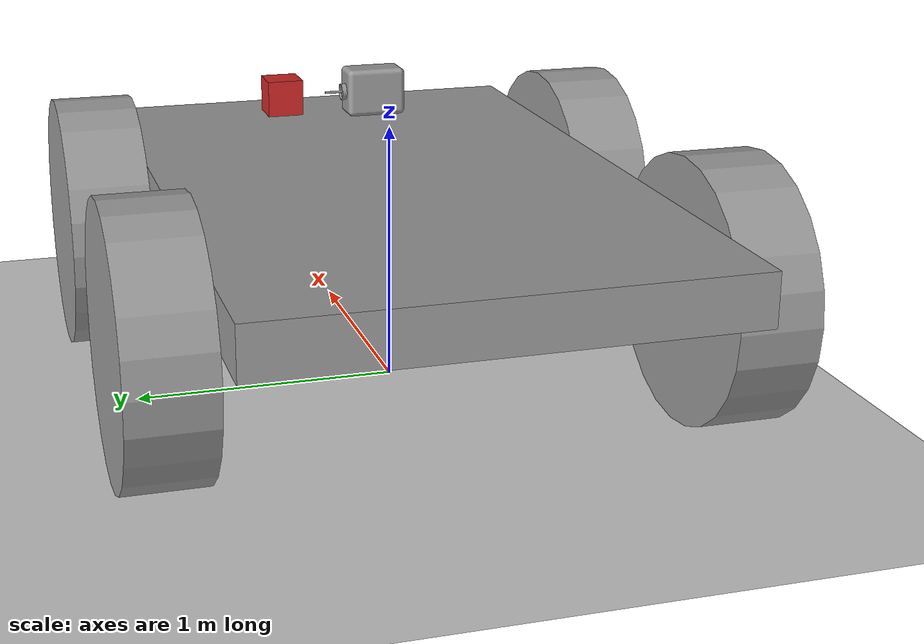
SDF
<?xml version="1.0" ?>
<sdf version="1.5">
  <world name="default">

    <include>
      <uri>model://sun</uri>
    </include>

    <include>
      <uri>model://ground_plane</uri>
    </include>

    <include>
      <uri>model://car</uri>
      <pose>0 0 0.55 0 0 0</pose>
    </include>

    <model name="motor">
      <pose>1.0 -0.2 0.92 0 0 0</pose>
      <link name="link">
        <pose>0.0 0 0.0 0 0 1.57079632679</pose>
        <self_collide>false</self_collide>
        <collision name="collision">
          <pose>0 0 0.0 0 0 0</pose>
          <geometry>
            <mesh>
              <uri>model://motor/meshes/motor.dae</uri>
              <scale>0.01 0.01 0.01</scale>
            </mesh>
          </geometry>
        </collision>
        <visual name="visual">
          <pose>0 0 0.0 0 0 0</pose>
          <geometry>
            <mesh>
              <uri>model://motor/meshes/motor.dae</uri>
              <scale>0.01 0.01 0.01</scale>
            </mesh>
          </geometry>
          <material>
            <script>
              <uri>file://media/materials/scripts/gazebo.material</uri>
              <name>Gazebo/Grey</name>
            </script>
          </material>
        </visual>
      </link>

      <link name="motor_core_link">
        <pose>0.02 0 0.0 0 0 0</pose>
        <self_collide>false</self_collide>
        <gravity>false</gravity>
        <collision name="collision">
          <pose>0.0 0 0.0 1.57079632679 0 0</pose>
          <geometry>
            <cylinder>
              <radius>0.05</radius>
              <length>0.05</length>
            </cylinder>
          </geometry>
        </collision>
        <visual name="visual">
          <pose>0.0 0 0.0 1.57079632679 0 0</pose>
          <geometry>
            <cylinder>
              <radius>0.05</radius>
              <length>0.05</length>
            </cylinder>
          </geometry>
          <material>
            <script>
              <uri>file://media/materials/scripts/gazebo.material</uri>
              <name>Gazebo/Grey</name>
            </script>
          </material>
        </visual>
      </link>

      <link name="motor_shaft_link">
        <pose>0.02 0 0.0 0 0 0</pose>
        <self_collide>false</self_collide>
        <gravity>false</gravity>
        <collision name="collision">
          <pose>0.0 0 0.0 1.57079632679 0 0</pose>
          <geometry>
            <cylinder>
              <radius>0.005</radius>
              <length>0.20</length>
            </cylinder>
          </geometry>
        </collision>
        <visual name="visual">
          <pose>0.0 0 0.0 1.57079632679 0 0</pose>
          <geometry>
            <cylinder>
              <radius>0.005</radius>
              <length>0.20</length>
            </cylinder>
          </geometry>
          <material>
            <script>
              <uri>file://media/materials/scripts/gazebo.material</uri>
              <name>Gazebo/Wood</name>
            </script>
          </material>
        </visual>
      </link>

      <joint name="motor_shaft_joint" type="revolute">
        <parent>motor_core_link</parent>
        <child>motor_shaft_link</child>
        <axis>
          <xyz>0 1 0</xyz>
          <limit>
            <lower>-1000000</lower>
            <upper>1000000</upper>
          </limit>
        </axis>
      </joint>

      <joint name="motor_joint" type="revolute">
        <parent>motor_core_link</parent>
        <child>link</child>
        <axis>
          <xyz>0 0 1</xyz>
          <limit>
            <lower>0</lower>
            <upper>0</upper>
          </limit>
        </axis>
      </joint>
    </model>

    <model name="gearbox">
      <pose>1.0 0.2 0.92 0 0 0</pose>
      <link name="gearbox_link">
        <collision name="gearbox_collision">
          <geometry>
            <box>
              <size>0.15 0.15 0.15</size>
            </box>
          </geometry>
        </collision>
        <visual name="gearbox_visual">
          <geometry>
            <box>
              <size>0.15 0.15 0.15</size>
            </box>
          </geometry>
          <material>
            <script>
              <name>Gazebo/Red</name>
            </script>
          </material>
        </visual>
      </link>

      <joint name="motor_chassis" type="revolute">
        <parent>motor::motor_core_link</parent>
        <child>car::chassis</child>
        <axis>
          <xyz>0 0 1</xyz>
          <limit>
            <lower>0</lower>
            <upper>0</upper>
          </limit>
        </axis>
      </joint>

      <joint name="gearbox_chassis" type="revolute">
        <parent>gearbox::gearbox_link</parent>
        <child>car::chassis</child>
        <axis>
          <xyz>0 0 1</xyz>
          <limit>
            <lower>0</lower>
            <upper>0</upper>
          </limit>
        </axis>
      </joint>

      <plugin filename="libGearboxPlugin.so" name="gearbox">
        <properties>
          <parent>motor::motor_shaft_link</parent>
          <child>car::axle</child>
          <gear_ratio>0.05</gear_ratio>
        </properties>
      </plugin>
    </model>
  </world>
</sdf>

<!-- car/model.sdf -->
<sdf version='1.5'>
  <model name='car'>
    <link name='chassis'>
      <pose>-0.047273 -7.9e-05 0.171157 0 -0 0</pose>
      <inertial>
        <inertia>
          <ixx>1</ixx>
          <ixy>0</ixy>
          <ixz>0</ixz>
          <iyy>1</iyy>
          <iyz>0</iyz>
          <izz>1</izz>
        </inertia>
        <mass>1</mass>
      </inertial>
      <self_collide>0</self_collide>
      <kinematic>0</kinematic>
      <visual name='visual'>
        <pose>0 0 0 0 -0 0</pose>
        <geometry>
          <box>
            <size>2.82301 1.75861 0.195707</size>
          </box>
        </geometry>
        <material>
          <lighting>1</lighting>
          <script>
            <uri>file://media/materials/scripts/gazebo.material</uri>
            <name>Gazebo/Grey</name>
          </script>
          <shader type='pixel'/>
          <ambient>0.3 0.3 0.3 1</ambient>
          <diffuse>0.7 0.7 0.7 1</diffuse>
          <specular>0.01 0.01 0.01 1</specular>
          <emissive>0 0 0 1</emissive>
        </material>
        <cast_shadows>1</cast_shadows>
        <transparency>0</transparency>
      </visual>
      <collision name='collision'>
        <laser_retro>0</laser_retro>
        <max_contacts>10</max_contacts>
        <pose>0 0 0 0 -0 0</pose>
        <geometry>
          <box>
            <size>2.82301 1.75861 0.195707</size>
          </box>
        </geometry>
        <surface>
          <friction>
            <ode>
              <mu>1</mu>
              <mu2>1</mu2>
              <fdir1>0 0 0</fdir1>
              <slip1>0</slip1>
              <slip2>0</slip2>
            </ode>
          </friction>
          <bounce>
            <restitution_coefficient>0</restitution_coefficient>
            <threshold>1e+06</threshold>
          </bounce>
          <contact>
            <collide_without_contact>0</collide_without_contact>
            <collide_without_contact_bitmask>1</collide_without_contact_bitmask>
            <collide_bitmask>1</collide_bitmask>
            <ode>
              <soft_cfm>0</soft_cfm>
              <soft_erp>0.2</soft_erp>
              <kp>1e+12</kp>
              <kd>1</kd>
              <max_vel>0.01</max_vel>
              <min_depth>0</min_depth>
            </ode>
            <bullet>
              <split_impulse>1</split_impulse>
              <split_impulse_penetration_threshold>-0.01</split_impulse_penetration_threshold>
              <soft_cfm>0</soft_cfm>
              <soft_erp>0.2</soft_erp>
              <kp>1e+12</kp>
              <kd>1</kd>
            </bullet>
          </contact>
        </surface>
      </collision>
    </link>
    <link name='axle'>
      <pose>0.744995 8e-06 -0.042789 0 0.0 0.0</pose>
      <inertial>
        <mass>1</mass>
        <pose>0 0 0 0 -0 0</pose>
        <inertia>
          <ixx>1</ixx>
          <ixy>0</ixy>
          <ixz>0</ixz>
          <iyy>1</iyy>
          <iyz>0</iyz>
          <izz>1</izz>
        </inertia>
      </inertial>
      <self_collide>0</self_collide>
      <kinematic>0</kinematic>
      <visual name='visual'>
        <pose>0.0 0.0 0.0 1.57079632679 0.0 0.0</pose>
        <geometry>
          <cylinder>
            <radius>0.0806153</radius>
            <length>2.15065</length>
          </cylinder>
        </geometry>
        <material>
          <lighting>1</lighting>
          <script>
            <uri>file://media/materials/scripts/gazebo.material</uri>
            <name>Gazebo/Grey</name>
          </script>
          <shader type='pixel'>
            <normal_map>__default__</normal_map>
          </shader>
          <ambient>0.3 0.3 0.3 1</ambient>
          <diffuse>0.7 0.7 0.7 1</diffuse>
          <specular>0.01 0.01 0.01 1</specular>
          <emissive>0 0 0 1</emissive>
        </material>
        <cast_shadows>1</cast_shadows>
        <transparency>0</transparency>
      </visual>
      <collision name='collision'>
        <laser_retro>0</laser_retro>
        <max_contacts>10</max_contacts>
        <pose>0.0 0.0 0.0 1.57079632679 0.0 0.0</pose>
        <geometry>
          <cylinder>
            <radius>0.080615</radius>
            <length>2.15065</length>
          </cylinder>
        </geometry>
        <surface>
          <friction>
            <ode>
              <mu>1</mu>
              <mu2>1</mu2>
              <fdir1>0 0 0</fdir1>
              <slip1>0</slip1>
              <slip2>0</slip2>
            </ode>
          </friction>
          <bounce>
            <restitution_coefficient>0</restitution_coefficient>
            <threshold>1e+06</threshold>
          </bounce>
          <contact>
            <collide_without_contact>0</collide_without_contact>
            <collide_without_contact_bitmask>1</collide_without_contact_bitmask>
            <collide_bitmask>1</collide_bitmask>
            <ode>
              <soft_cfm>0</soft_cfm>
              <soft_erp>0.2</soft_erp>
              <kp>1e+12</kp>
              <kd>1</kd>
              <max_vel>0.01</max_vel>
              <min_depth>0</min_depth>
            </ode>
            <bullet>
              <split_impulse>1</split_impulse>
              <split_impulse_penetration_threshold>-0.01</split_impulse_penetration_threshold>
              <soft_cfm>0</soft_cfm>
              <soft_erp>0.2</soft_erp>
              <kp>1e+12</kp>
              <kd>1</kd>
            </bullet>
          </contact>
        </surface>
      </collision>
    </link>
    <link name='wheel_1'>
      <pose>0.744881 -1.03476 -0.042789 1.57 -0 0</pose>
      <inertial>
        <mass>1</mass>
        <pose>0 0 0 0 -0 0</pose>
        <inertia>
          <ixx>1</ixx>
          <ixy>0</ixy>
          <ixz>0</ixz>
          <iyy>1</iyy>
          <iyz>0</iyz>
          <izz>1</izz>
        </inertia>
      </inertial>
      <self_collide>0</self_collide>
      <kinematic>0</kinematic>
      <visual name='visual'>
        <pose>0 0 0 0 -0 0</pose>
        <geometry>
          <cylinder>
            <radius>0.5</radius>
            <length>0.310749</length>
          </cylinder>
        </geometry>
        <material>
          <lighting>1</lighting>
          <script>
            <uri>file://media/materials/scripts/gazebo.material</uri>
            <name>Gazebo/Grey</name>
          </script>
          <shader type='pixel'>
            <normal_map>__default__</normal_map>
          </shader>
          <ambient>0.3 0.3 0.3 1</ambient>
          <diffuse>0.7 0.7 0.7 1</diffuse>
          <specular>0.01 0.01 0.01 1</specular>
          <emissive>0 0 0 1</emissive>
        </material>
        <cast_shadows>1</cast_shadows>
        <transparency>0</transparency>
      </visual>
      <collision name='collision'>
        <laser_retro>0</laser_retro>
        <max_contacts>10</max_contacts>
        <pose>0 0 0 0 -0 0</pose>
        <geometry>
          <cylinder>
            <radius>0.5</radius>
            <length>0.310749</length>
          </cylinder>
        </geometry>
        <surface>
          <friction>
            <ode>
              <mu>1</mu>
              <mu2>1</mu2>
              <fdir1>0 0 0</fdir1>
              <slip1>0</slip1>
              <slip2>0</slip2>
            </ode>
          </friction>
          <bounce>
            <restitution_coefficient>0</restitution_coefficient>
            <threshold>1e+06</threshold>
          </bounce>
          <contact>
            <collide_without_contact>0</collide_without_contact>
            <collide_without_contact_bitmask>1</collide_without_contact_bitmask>
            <collide_bitmask>1</collide_bitmask>
            <ode>
              <soft_cfm>0</soft_cfm>
              <soft_erp>0.2</soft_erp>
              <kp>1e+12</kp>
              <kd>1</kd>
              <max_vel>0.01</max_vel>
              <min_depth>0</min_depth>
            </ode>
            <bullet>
              <split_impulse>1</split_impulse>
              <split_impulse_penetration_threshold>-0.01</split_impulse_penetration_threshold>
              <soft_cfm>0</soft_cfm>
              <soft_erp>0.2</soft_erp>
              <kp>1e+12</kp>
              <kd>1</kd>
            </bullet>
          </contact>
        </surface>
      </collision>
    </link>
    <link name='wheel_2'>
      <pose>-0.721244 -1.03476 -0.042789 1.5708 -0 0</pose>
      <inertial>
        <mass>1</mass>
        <pose>0 0 0 0 -0 0</pose>
        <inertia>
          <ixx>1</ixx>
          <ixy>0</ixy>
          <ixz>0</ixz>
          <iyy>1</iyy>
          <iyz>0</iyz>
          <izz>1</izz>
        </inertia>
      </inertial>
      <self_collide>0</self_collide>
      <kinematic>0</kinematic>
      <visual name='ModelPreview_1::wheel_2::visual'>
        <pose>0 0 0 0 -0 0</pose>
        <geometry>
          <cylinder>
            <radius>0.5</radius>
            <length>0.310749</length>
          </cylinder>
        </geometry>
        <material>
          <lighting>1</lighting>
          <script>
            <uri>file://media/materials/scripts/gazebo.material</uri>
            <name>Gazebo/Grey</name>
          </script>
          <shader type='pixel'>
            <normal_map>__default__</normal_map>
          </shader>
          <ambient>0.3 0.3 0.3 1</ambient>
          <diffuse>0.7 0.7 0.7 1</diffuse>
          <specular>0.01 0.01 0.01 1</specular>
          <emissive>0 0 0 1</emissive>
        </material>
        <cast_shadows>1</cast_shadows>
        <transparency>0</transparency>
      </visual>
      <collision name='collision'>
        <laser_retro>0</laser_retro>
        <max_contacts>10</max_contacts>
        <pose>0 0 0 0 -0 0</pose>
        <geometry>
          <cylinder>
            <radius>0.5</radius>
            <length>0.310749</length>
          </cylinder>
        </geometry>
        <surface>
          <friction>
            <ode>
              <mu>1</mu>
              <mu2>1</mu2>
              <fdir1>0 0 0</fdir1>
              <slip1>0</slip1>
              <slip2>0</slip2>
            </ode>
          </friction>
          <bounce>
            <restitution_coefficient>0</restitution_coefficient>
            <threshold>1e+06</threshold>
          </bounce>
          <contact>
            <collide_without_contact>0</collide_without_contact>
            <collide_without_contact_bitmask>1</collide_without_contact_bitmask>
            <collide_bitmask>1</collide_bitmask>
            <ode>
              <soft_cfm>0</soft_cfm>
              <soft_erp>0.2</soft_erp>
              <kp>1e+12</kp>
              <kd>1</kd>
              <max_vel>0.01</max_vel>
              <min_depth>0</min_depth>
            </ode>
            <bullet>
              <split_impulse>1</split_impulse>
              <split_impulse_penetration_threshold>-0.01</split_impulse_penetration_threshold>
              <soft_cfm>0</soft_cfm>
              <soft_erp>0.2</soft_erp>
              <kp>1e+12</kp>
              <kd>1</kd>
            </bullet>
          </contact>
        </surface>
      </collision>
    </link>
    <link name='wheel_3'>
      <pose>-0.721244 1.0346 -0.042789 1.5708 -0 0</pose>
      <inertial>
        <mass>1</mass>
        <pose>0 0 0 0 -0 0</pose>
        <inertia>
          <ixx>1</ixx>
          <ixy>0</ixy>
          <ixz>0</ixz>
          <iyy>1</iyy>
          <iyz>0</iyz>
          <izz>1</izz>
        </inertia>
      </inertial>
      <self_collide>0</self_collide>
      <kinematic>0</kinematic>
      <visual name='ModelPreview_1::wheel_3::visual'>
        <pose>0 0 0 0 -0 0</pose>
        <geometry>
          <cylinder>
            <radius>0.5</radius>
            <length>0.310749</length>
          </cylinder>
        </geometry>
        <material>
          <lighting>1</lighting>
          <script>
            <uri>file://media/materials/scripts/gazebo.material</uri>
            <name>Gazebo/Grey</name>
          </script>
          <shader type='pixel'>
            <normal_map>__default__</normal_map>
          </shader>
          <ambient>0.3 0.3 0.3 1</ambient>
          <diffuse>0.7 0.7 0.7 1</diffuse>
          <specular>0.01 0.01 0.01 1</specular>
          <emissive>0 0 0 1</emissive>
        </material>
        <cast_shadows>1</cast_shadows>
        <transparency>0</transparency>
      </visual>
      <collision name='collision'>
        <laser_retro>0</laser_retro>
        <max_contacts>10</max_contacts>
        <pose>0 0 0 0 -0 0</pose>
        <geometry>
          <cylinder>
            <radius>0.5</radius>
            <length>0.310749</length>
          </cylinder>
        </geometry>
        <surface>
          <friction>
            <ode>
              <mu>1</mu>
              <mu2>1</mu2>
              <fdir1>0 0 0</fdir1>
              <slip1>0</slip1>
              <slip2>0</slip2>
            </ode>
          </friction>
          <bounce>
            <restitution_coefficient>0</restitution_coefficient>
            <threshold>1e+06</threshold>
          </bounce>
          <contact>
            <collide_without_contact>0</collide_without_contact>
            <collide_without_contact_bitmask>1</collide_without_contact_bitmask>
            <collide_bitmask>1</collide_bitmask>
            <ode>
              <soft_cfm>0</soft_cfm>
              <soft_erp>0.2</soft_erp>
              <kp>1e+12</kp>
              <kd>1</kd>
              <max_vel>0.01</max_vel>
              <min_depth>0</min_depth>
            </ode>
            <bullet>
              <split_impulse>1</split_impulse>
              <split_impulse_penetration_threshold>-0.01</split_impulse_penetration_threshold>
              <soft_cfm>0</soft_cfm>
              <soft_erp>0.2</soft_erp>
              <kp>1e+12</kp>
              <kd>1</kd>
            </bullet>
          </contact>
        </surface>
      </collision>
    </link>
    <link name='wheel_4'>
      <pose>0.744881 1.0346 -0.042789 1.57 -0 0</pose>
      <inertial>
        <mass>1</mass>
        <pose>0 0 0 0 -0 0</pose>
        <inertia>
          <ixx>1</ixx>
          <ixy>0</ixy>
          <ixz>0</ixz>
          <iyy>1</iyy>
          <iyz>0</iyz>
          <izz>1</izz>
        </inertia>
      </inertial>
      <self_collide>0</self_collide>
      <kinematic>0</kinematic>
      <visual name='ModelPreview_1::wheel_4::visual'>
        <pose>0 0 0 0 -0 0</pose>
        <geometry>
          <cylinder>
            <radius>0.5</radius>
            <length>0.310749</length>
          </cylinder>
        </geometry>
        <material>
          <lighting>1</lighting>
          <script>
            <uri>file://media/materials/scripts/gazebo.material</uri>
            <name>Gazebo/Grey</name>
          </script>
          <shader type='pixel'>
            <normal_map>__default__</normal_map>
          </shader>
          <ambient>0.3 0.3 0.3 1</ambient>
          <diffuse>0.7 0.7 0.7 1</diffuse>
          <specular>0.01 0.01 0.01 1</specular>
          <emissive>0 0 0 1</emissive>
        </material>
        <cast_shadows>1</cast_shadows>
        <transparency>0</transparency>
      </visual>
      <collision name='collision'>
        <laser_retro>0</laser_retro>
        <max_contacts>10</max_contacts>
        <pose>0 0 0 0 -0 0</pose>
        <geometry>
          <cylinder>
            <radius>0.5</radius>
            <length>0.310749</length>
          </cylinder>
        </geometry>
        <surface>
          <friction>
            <ode>
              <mu>1</mu>
              <mu2>1</mu2>
              <fdir1>0 0 0</fdir1>
              <slip1>0</slip1>
              <slip2>0</slip2>
            </ode>
          </friction>
          <bounce>
            <restitution_coefficient>0</restitution_coefficient>
            <threshold>1e+06</threshold>
          </bounce>
          <contact>
            <collide_without_contact>0</collide_without_contact>
            <collide_without_contact_bitmask>1</collide_without_contact_bitmask>
            <collide_bitmask>1</collide_bitmask>
            <ode>
              <soft_cfm>0</soft_cfm>
              <soft_erp>0.2</soft_erp>
              <kp>1e+12</kp>
              <kd>1</kd>
              <max_vel>0.01</max_vel>
              <min_depth>0</min_depth>
            </ode>
            <bullet>
              <split_impulse>1</split_impulse>
              <split_impulse_penetration_threshold>-0.01</split_impulse_penetration_threshold>
              <soft_cfm>0</soft_cfm>
              <soft_erp>0.2</soft_erp>
              <kp>1e+12</kp>
              <kd>1</kd>
            </bullet>
          </contact>
        </surface>
      </collision>
    </link>
    <joint name='chassis_JOINT_1' type='revolute'>
      <parent>chassis</parent>
      <child>wheel_2</child>
      <axis>
        <xyz>0 0 1</xyz>
        <use_parent_model_frame>0</use_parent_model_frame>
        <limit>
          <lower>-1000</lower>
          <upper>1000</upper>
          <effort>-1</effort>
          <velocity>-1</velocity>
        </limit>
        <dynamics>
          <spring_reference>0</spring_reference>
          <spring_stiffness>0</spring_stiffness>
          <damping>0</damping>
          <friction>0</friction>
        </dynamics>
      </axis>
      <pose>0 0 0 0 -0 0</pose>
      <physics>
        <ode>
          <limit>
            <cfm>0</cfm>
            <erp>0.2</erp>
          </limit>
          <suspension>
            <cfm>0</cfm>
            <erp>0.2</erp>
          </suspension>
        </ode>
      </physics>
    </joint>
    <joint name='chassis_JOINT_2_0' type='revolute'>
      <parent>chassis</parent>
      <child>axle</child>
      <axis>
        <xyz>0 1 0</xyz>
        <use_parent_model_frame>0</use_parent_model_frame>
        <limit>
          <lower>10000</lower>
          <upper>-1e+06</upper>
          <effort>-1</effort>
          <velocity>-1</velocity>
        </limit>
        <dynamics>
          <spring_reference>0</spring_reference>
          <spring_stiffness>0</spring_stiffness>
          <damping>0</damping>
          <friction>0</friction>
        </dynamics>
      </axis>
      <pose>0 0 0 0 -0 0</pose>
      <physics>
        <ode>
          <cfm>0</cfm>
          <bounce>0</bounce>
          <velocity>0</velocity>
          <fudge_factor>0</fudge_factor>
          <limit>
            <cfm>0</cfm>
            <erp>0.2</erp>
          </limit>
          <suspension>
            <cfm>0</cfm>
            <erp>0.2</erp>
          </suspension>
        </ode>
      </physics>
    </joint>
    <joint name='chassis_JOINT_2' type='revolute'>
      <parent>chassis</parent>
      <child>wheel_3</child>
      <axis>
        <xyz>0 0 1</xyz>
        <use_parent_model_frame>0</use_parent_model_frame>
        <limit>
          <lower>-1000</lower>
          <upper>1000</upper>
          <effort>-1</effort>
          <velocity>-1</velocity>
        </limit>
        <dynamics>
          <spring_reference>0</spring_reference>
          <spring_stiffness>0</spring_stiffness>
          <damping>0</damping>
          <friction>0</friction>
        </dynamics>
      </axis>
      <pose>0 0 0 0 -0 0</pose>
      <physics>
        <ode>
          <limit>
            <cfm>0</cfm>
            <erp>0.2</erp>
          </limit>
          <suspension>
            <cfm>0</cfm>
            <erp>0.2</erp>
          </suspension>
        </ode>
      </physics>
    </joint>
    <joint name='axle_JOINT_0' type='revolute'>
      <parent>axle</parent>
      <child>wheel_1</child>
      <axis>
        <xyz>1 0 0</xyz>
        <use_parent_model_frame>0</use_parent_model_frame>
        <limit>
          <lower>0</lower>
          <upper>0</upper>
          <effort>-1</effort>
          <velocity>-1</velocity>
        </limit>
        <dynamics>
          <spring_reference>0</spring_reference>
          <spring_stiffness>0</spring_stiffness>
          <damping>0</damping>
          <friction>0</friction>
        </dynamics>
      </axis>
      <pose>0 0 0 0 -0 0</pose>
      <physics>
        <ode>
          <cfm>0</cfm>
          <bounce>0</bounce>
          <velocity>0</velocity>
          <fudge_factor>0</fudge_factor>
          <limit>
            <cfm>0</cfm>
            <erp>0.2</erp>
          </limit>
          <suspension>
            <cfm>0</cfm>
            <erp>0.2</erp>
          </suspension>
        </ode>
      </physics>
    </joint>
    <joint name='axle_JOINT_1' type='revolute'>
      <parent>axle</parent>
      <child>wheel_4</child>
      <axis>
        <xyz>1 0 0</xyz>
        <use_parent_model_frame>0</use_parent_model_frame>
        <limit>
          <lower>0</lower>
          <upper>0</upper>
          <effort>-1</effort>
          <velocity>-1</velocity>
        </limit>
        <dynamics>
          <spring_reference>0</spring_reference>
          <spring_stiffness>0</spring_stiffness>
          <damping>0</damping>
          <friction>0</friction>
        </dynamics>
      </axis>
      <pose>0 0 0 0 -0 0</pose>
      <physics>
        <ode>
          <cfm>0</cfm>
          <bounce>0</bounce>
          <velocity>0</velocity>
          <fudge_factor>0</fudge_factor>
          <limit>
            <cfm>0</cfm>
            <erp>0.2</erp>
          </limit>
          <suspension>
            <cfm>0</cfm>
            <erp>0.2</erp>
          </suspension>
        </ode>
      </physics>
    </joint>
    <static>0</static>
    <allow_auto_disable>1</allow_auto_disable>
  </model>
</sdf>
